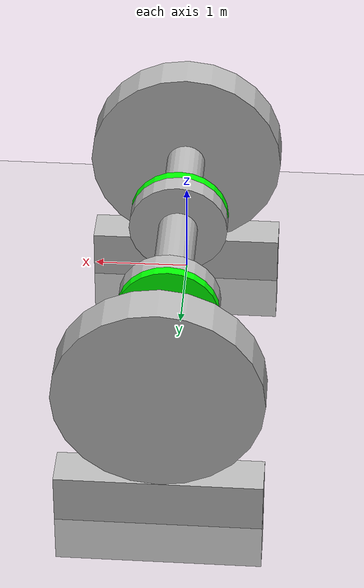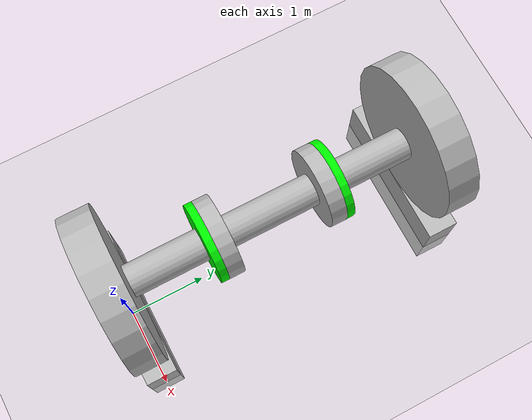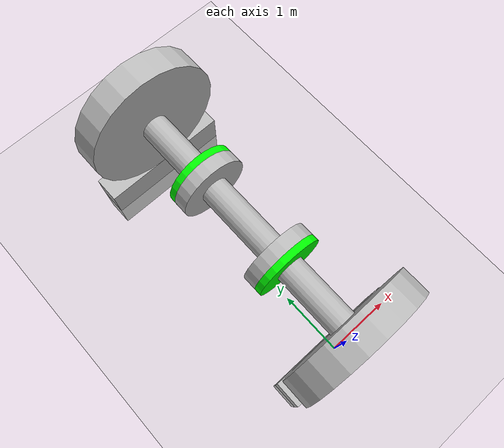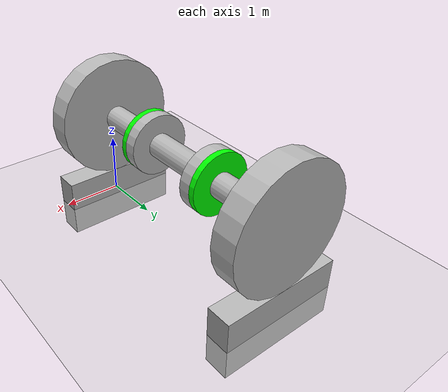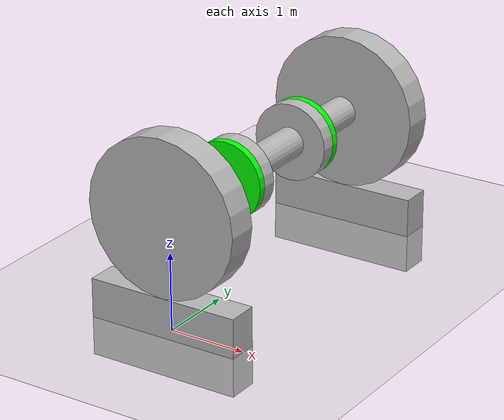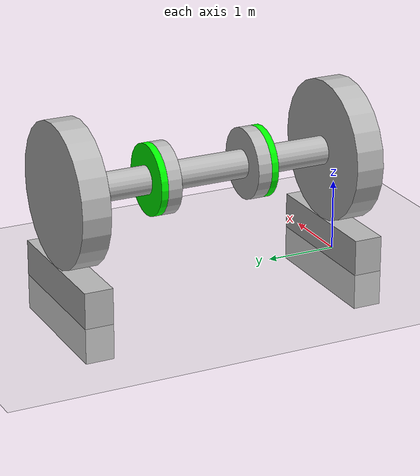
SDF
<?xml version="1.0" ?>
<sdf version="1.4">
  <world name="default">

    <!-- ground plane -->
    <include>
      <uri>model://ground_plane</uri>
    </include>

    <!-- light -->
    <include>
      <uri>model://sun</uri>
    </include>

    <include>
      <uri>model://train_model</uri>
      <name>train chassis</name>
      <pose>0.0 0.0 0 0 0 0</pose>
    </include>

  </world>
</sdf>

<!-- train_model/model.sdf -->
<sdf version="1.5">
  <model name="train_model">
    <static>true</static>
    <link name="axis">
        <pose>0.0 2.0 1.5 0.0 1.5707963267948966 1.5707963267948966</pose>
        <collision name="collision">
            <geometry>
                <cylinder>
                    <radius>0.2</radius>
                    <length>4.0</length>
                </cylinder>
            </geometry>
        </collision>
        <visual name="visual">
            <geometry>
                <cylinder>
                    <radius>0.2</radius>
                    <length>4.0</length>
                </cylinder>
            </geometry>
        </visual>
    </link>
    <link name='left_binary'>
        <pose>0.0 0.0 0.0 0 0 0</pose>
        <collision name='collision'>
            <geometry>
                <box>
                    <size>2.0 0.4 1.0</size>
                </box>
            </geometry>
        </collision>
        <visual name='visual'>
            <geometry>
                <box>
                    <size>2.0 0.4 1.0</size>
                </box>
            </geometry>
        </visual>
    </link>
    <link name='right_binary'>
        <pose>0.0 4.0 0.0 0 0 0</pose>
        <collision name='collision'>
            <geometry>
                <box>
                    <size>2.0 0.4 1.0</size>
                </box>
            </geometry>
        </collision>
        <visual name='visual'>
            <geometry>
                <box>
                    <size>2.0 0.4 1.0</size>
                </box>
            </geometry>
        </visual>
    </link>
    <link name="left_wheel">
        <pose>0.0 0.0 1.5 0.0 1.5707963267948966 1.5707963267948966</pose>
        <collision name="collision">
            <geometry>
                <cylinder>
                    <radius>1.0</radius>
                    <length>0.4</length>
                </cylinder>
            </geometry>
        </collision>
        <visual name="visual">
            <geometry>
                <cylinder>
                    <radius>1.0</radius>
                    <length>0.4</length>
                </cylinder>
            </geometry>
        </visual>
    </link>
    <link name="right_wheel">
        <pose>0.0 4.0 1.5 0.0 1.5707963267948966 1.5707963267948966</pose>
        <collision name="collision">
            <geometry>
                <cylinder>
                    <radius>1.0</radius>
                    <length>0.4</length>
                </cylinder>
            </geometry>
        </collision>
        <visual name="visual">
            <geometry>
                <cylinder>
                    <radius>1.0</radius>
                    <length>0.4</length>
                </cylinder>
            </geometry>
        </visual>
    </link>
    <link name="left_disk">
        <pose>0.0 1.3333333333333333 1.5 0.0 1.5707963267948966 1.5707963267948966</pose>
        <collision name="collision">
            <geometry>
                <cylinder>
                    <radius>0.5</radius>
                    <length>0.2</length>
                </cylinder>
            </geometry>
        </collision>
        <visual name="visual">
            <geometry>
                <cylinder>
                    <radius>0.5</radius>
                    <length>0.2</length>
                </cylinder>
            </geometry>
        </visual>
    </link>
    <link name="right_disk">
        <pose>0.0 2.6666666666666665 1.5 0.0 1.5707963267948966 1.5707963267948966</pose>
        <collision name="collision">
            <geometry>
                <cylinder>
                    <radius>0.5</radius>
                    <length>0.2</length>
                </cylinder>
            </geometry>
        </collision>
        <visual name="visual">
            <geometry>
                <cylinder>
                    <radius>0.5</radius>
                    <length>0.2</length>
                </cylinder>
            </geometry>
        </visual>
    </link>
    <link name="left_pad">
        <pose>0.0 1.1833333333333331 1.5 0.0 1.5707963267948966 1.5707963267948966</pose>
        <collision name="collision">
            <geometry>
                <cylinder>
                    <radius>0.5</radius>
                    <length>0.1</length>
                </cylinder>
            </geometry>
        </collision>
        <visual name="visual">
            <geometry>
                <cylinder>
                    <radius>0.5</radius>
                    <length>0.1</length>
                </cylinder>
            </geometry>
            <material>
                <ambient>0.0 1.0 0.0 1</ambient>
            </material>
        </visual>
    </link>
    <link name="right_pad">
        <pose>0.0 2.8166666666666664 1.5 0.0 1.5707963267948966 1.5707963267948966</pose>
        <collision name="collision">
            <geometry>
                <cylinder>
                    <radius>0.5</radius>
                    <length>0.1</length>
                </cylinder>
            </geometry>
        </collision>
        <visual name="visual">
            <geometry>
                <cylinder>
                    <radius>0.5</radius>
                    <length>0.1</length>
                </cylinder>
            </geometry>
            <material>
                <ambient>0.0 1.0 0.0 1</ambient>
            </material>
        </visual>
    </link>
  </model>
</sdf>
